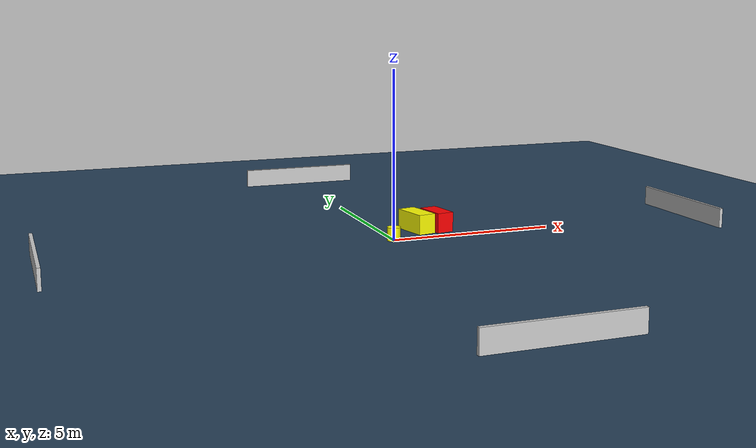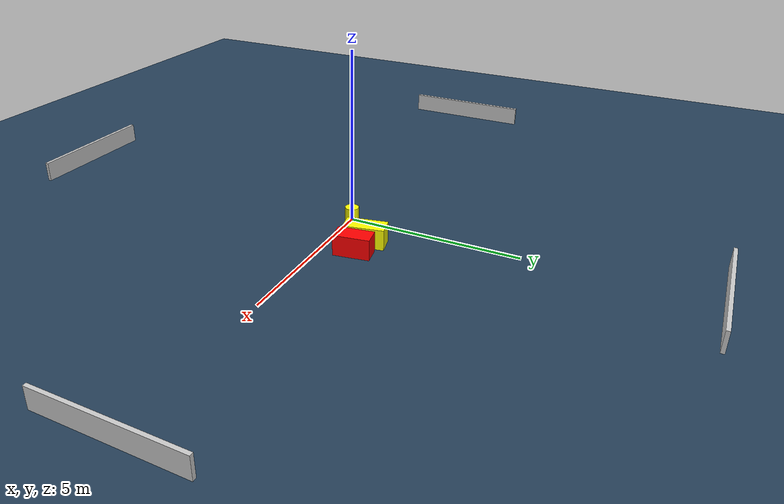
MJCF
<?xml version="1.0" ?>
<mujoco model="generated_environment">
  <option timestep="0.01" integrator="RK4" cone="elliptic"/>
  <default>
    <geom density="1"/>
  </default>
  <asset>
    <texture builtin="gradient" height="3072" name="skybox" rgb1="0.3 0.5 0.7" rgb2="0 0 0" type="skybox" width="512"/>
    <texture builtin="checker" height="300" name="groundplane" rgb1="0.2 0.3 0.4" rgb2="0.1 0.2 0.3" type="2d" width="300"/>
    <material name="groundplane" reflectance="0.2" texrepeat="5 5" texture="groundplane"/>
  </asset>
  <worldbody>
    <light dir="0 0 -1" directional="true" pos="0 0 1.5"/>
    <geom condim="3" friction="0.5 0.005 0.001" material="groundplane" name="floor" pos="0 0 0" size="0 0 0.05" type="plane"/>
    <body name="walls">
      <geom name="wall_1" condim="4" pos="-10.0 0.0 0.3" rgba="0.800000011920929 0.800000011920929 0.800000011920929 1.0" size="0.05 2.0 0.3" type="box"/>
      <geom name="wall_2" condim="4" pos="10.0 0.0 0.3" rgba="0.800000011920929 0.800000011920929 0.800000011920929 1.0" size="0.05 2.0 0.3" type="box"/>
      <geom name="wall_3" condim="4" pos="0.0 -10.0 0.3" rgba="0.800000011920929 0.800000011920929 0.800000011920929 1.0" size="2.0 0.05 0.3" type="box"/>
      <geom name="wall_4" condim="4" pos="0.0 10.0 0.3" rgba="0.800000011920929 0.800000011920929 0.800000011920929 1.0" size="2.0 0.05 0.3" type="box"/>
    </body>
    <body name="robot">
      <joint name="joint_x" type="slide" pos="0 0 0" axis="1 0 0"/>
      <joint name="joint_y" type="slide" pos="0 0 0" axis="0 1 0"/>
      <geom name="robot" type="cylinder" pos="0.0 0.0 0.2" size="0.2 0.2 0.0" mass="5.0" friction="1.0 0.005 0.0001" condim="4" rgba="1.0 1.0 0.0 1.0"/>
    </body>
    <body name="obstacle_1_movable">
      <geom name="obstacle_1_movable" condim="4" pos="1.1104842811652875 0.9687959400597668 0.3" euler="0 0 281.63999810134294" friction="0.0 0.005 0.001" rgba="1.0 1.0 0.0 1.0" size="0.5786610324488499 0.2739612306245608 0.3" type="box" mass="0.1"/>
      <joint type="free"/>
    </body>
    <body name="obstacle_2_static">
      <geom name="obstacle_2_static" condim="4" pos="1.7458788202842028 0.9288151938402297 0.3" euler="0 0 279.04969856009615" friction="0.0 0.005 0.001" rgba="1.0 0.0 0.0 1.0" size="0.5117907405113444 0.26567607161509327 0.3" type="box"/>
    </body>
  </worldbody>
  <actuator>
    <motor name="actuator_x" joint="joint_x" gear="1" ctrlrange="-1 1"/>
    <motor name="actuator_y" joint="joint_y" gear="1" ctrlrange="-1 1"/>
  </actuator>
</mujoco>
